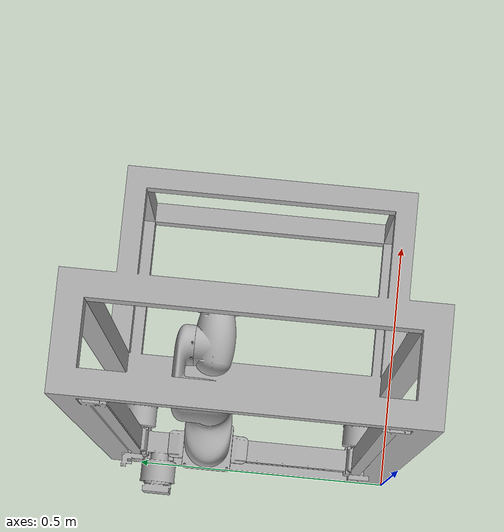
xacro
<?xml version="1.0"?>
<robot xmlns:xacro="http://wiki.ros.org/xacro" name="mr_robot">

    <!-- define default arguments -->
    <xacro:arg name="prefix" default=""/>
    <xacro:arg name="joint_limited" default="true"/>
    <xacro:arg name="safety_limits" default="false"/>
    <xacro:arg name="transmission_hw_interface" default="hardware_interface/PositionJointInterface"/>
    <xacro:arg name="use_palm" default="true"/>
    <xacro:arg name="xyz" default="0.0 0.0 0.0" />
    <xacro:arg name="rpy" default="0.0 0.0 0.0" />

    <!-- include common stuff macro -->
    <xacro:include filename="$(find mr_description)/urdf/common.gazebo.xacro" />

    <!-- include mr and palm macro -->
    <xacro:include filename="$(find mr_description)/urdf/mr.urdf.xacro" />
    <xacro:include filename="$(find mr_description)/urdf/palm.urdf.xacro" />

    <!-- construct mr and palm -->
    <xacro:mr prefix="$(arg prefix)" joint_limited="$(arg joint_limited)" safety_limits="$(arg safety_limits)" transmission_hw_interface="$(arg transmission_hw_interface)" />
    <xacro:if value="$(arg use_palm)">
        <xacro:palm prefix="$(arg prefix)" attach_to="$(arg prefix)ee_link" />
    </xacro:if>

    <!-- construct the scene -->
    <link name="world" />
    <joint name="$(arg prefix)world_joint" type="fixed">
        <parent link="world" />
        <child link = "$(arg prefix)rail_vertical_link" />
        <origin xyz="$(arg xyz)" rpy="$(arg rpy)" />
    </joint>

</robot>

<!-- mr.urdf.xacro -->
<robot xmlns:xacro="http://wiki.ros.org/xacro">

    <xacro:include filename="$(find mr_description)/urdf/mr.transmission.xacro" />
    <xacro:include filename="$(find mr_description)/urdf/mr.gazebo.xacro" />

    <xacro:macro name="link_inertial" params="radius length height mass *origin *inertia">
        <inertial>
            <mass value="${mass}" />
            <xacro:insert_block name="origin" />
            <xacro:insert_block name="inertia" />
        </inertial>
    </xacro:macro>

    <xacro:macro name="mr"
        params="prefix:=mr_ joint_limited:=true
        joint1_lower_limit:=0.0            joint1_upper_limit:=0.7934
        joint2_lower_limit:=0.0            joint2_upper_limit:=0.14936
        joint3_lower_limit:=${-pi}         joint3_upper_limit:=${pi*0.25}
        joint4_lower_limit:=${-pi}         joint4_upper_limit:=${pi*0.25}
        joint5_lower_limit:=${-pi*0.5}     joint5_upper_limit:=${pi*0.5}
        safety_limits:=false safety_pos_margin:=0.01 safety_k_position:=20
        transmission_hw_interface:=hardware_interface/PositionJointInterface">

        <!-- Inertia parameters -->
        <xacro:property name="rail_vertical_mass" value="54.727661" />  <!-- This mass might be incorrect -->
        <xacro:property name="rail_horizontal_mass" value="1.801061" />
        <xacro:property name="mount_mass" value="0.364397" />
        <xacro:property name="base_mass" value="0.156140" />
        <xacro:property name="shoulder_mass" value="0.987376" />
        <xacro:property name="upperarm_mass" value="0.862952" />
        <xacro:property name="forearm_mass" value="0.714455" />

        <xacro:property name="rail_vertical_cog" value="0.172751 0.287763 0.558117" />
        <xacro:property name="rail_horizontal_cog" value="-0.020063 0.215257 -0.022838" />
        <xacro:property name="mount_cog" value="-0.000008 0.0 -0.009563" />
        <xacro:property name="base_cog" value="0.001693 -0.000940 0.004017" />
        <xacro:property name="shoulder_cog" value="0.016427 0.000038 -0.02561" />
        <xacro:property name="upperarm_cog" value="0.010984 0.011237 0.024315" />
        <xacro:property name="forearm_cog" value="0.006149 0.000012 0.026218" />

        <!-- Kinematic model -->
        <!-- Properties from crcontrol.conf -->

        <!-- Link height, length and radius used in model -->
        <xacro:property name="rail_vertical_height" value="1.4" />
        <xacro:property name="rail_horizontal_height" value="0.12" />
        <xacro:property name="mount_height" value="0.02118" />
        <xacro:property name="base_height" value="0.008" />
        <xacro:property name="shoulder_height" value="0.10034" />
        <xacro:property name="upperarm_height" value="0.04544" />
        <xacro:property name="forearm_height" value="0.6341" />

        <xacro:property name="rail_vertical_length" value="0.56" />
        <xacro:property name="rail_horizontal_length" value="0.4" />
        <xacro:property name="mount_length" value="0.15114" />
        <xacro:property name="base_length" value="0.088" />
        <xacro:property name="shoulder_length" value="0.07074" />
        <xacro:property name="upperarm_length" value="0.10007" />
        <xacro:property name="forearm_length" value="0.6341" />

        <xacro:property name="rail_vertical_radius" value="0.3890" />  <!-- manually measured -->
        <xacro:property name="rail_horizontal_radius" value="0.06" />
        <xacro:property name="mount_radius" value="0.07557" />
        <xacro:property name="base_radius" value="0.0622" />
        <xacro:property name="shoulder_radius" value="0.041" />
        <xacro:property name="upperarm_radius" value="0.041" />
        <xacro:property name="elbow_radius" value="0.0375" />
        <xacro:property name="forearm_radius" value="0.037" />
        <xacro:property name="wrist_radius" value="0.0308" />

        <!-- Links and joints for mr -->
        <link name="${prefix}rail_vertical_link" >
            <visual>
                <geometry>
                    <mesh filename="package://mr_description/meshes/mr/visual/rail_vertical.dae" />
                </geometry>
                <material name="LightGrey">
                    <color rgba="0.7 0.7 0.7 1.0"/>
                </material>
            </visual>
            <collision>
                <geometry>
                    <mesh filename="package://mr_description/meshes/mr/collision/rail_vertical.stl" />
                </geometry>
            </collision>
            <xacro:link_inertial radius="${rail_vertical_radius}" length="${rail_vertical_length}" height="${rail_vertical_height}" mass="${rail_vertical_mass}">
                <origin xyz="0.172751 0.287763 0.558117" rpy="0.0 0.0 0.0" />
                <inertia ixx="36.516795" ixy="2.659442" ixz="3.545347"
                        iyy="32.321986" iyz="8.844368"
                        izz="10.701999" />
            </xacro:link_inertial>
        </link>

        <joint name="${prefix}joint1" type="prismatic">
            <parent link="${prefix}rail_vertical_link" />
            <child link = "${prefix}rail_horizontal_link" />
            <origin xyz="0.01977 0.1295 0.35006" rpy="0.0 0.0 0.0" />
            <axis xyz="0 0 1" />
            <xacro:unless value="${joint_limited}">
                <limit lower="0.0" upper="0.88" effort="200.0" velocity="0.314159"/>
                <xacro:if value="${safety_limits}">
                    <safety_controller soft_lower_limit="${0.0 + safety_pos_margin}" soft_upper_limit="${0.88 - safety_pos_margin}" k_position="${safety_k_position}" k_velocity="0.0"/>
                </xacro:if>
            </xacro:unless>
            <xacro:if value="${joint_limited}">
                <limit lower="${joint1_lower_limit}" upper="${joint1_upper_limit}" effort="200.0" velocity="0.314159"/>
                <xacro:if value="${safety_limits}">
                    <safety_controller soft_lower_limit="${joint1_lower_limit + safety_pos_margin}" soft_upper_limit="${joint1_upper_limit - safety_pos_margin}" k_position="${safety_k_position}" k_velocity="0.0"/>
                </xacro:if>
            </xacro:if>
            <dynamics damping="0.0" friction="0.0"/>
        </joint>

        <link name="${prefix}rail_horizontal_link">
            <visual>
                <geometry>
                    <mesh filename="package://mr_description/meshes/mr/visual/rail_horizontal.dae" />
                </geometry>
                <material name="LightGrey">
                    <color rgba="0.7 0.7 0.7 1.0"/>
                </material>
            </visual>
            <collision>
                <geometry>
                    <mesh filename="package://mr_description/meshes/mr/collision/rail_horizontal.stl" />
                </geometry>
            </collision>
            <xacro:link_inertial radius="${rail_horizontal_radius}" length="${rail_horizontal_length}" height="${rail_horizontal_height}" mass="${rail_horizontal_mass}">
                <origin xyz="-0.020063 0.215257 -0.022838" rpy="0.0 0.0 0.0" />
                <inertia ixx="0.115403" ixy="-0.011407" ixz="0.000829"
                        iyy="0.004044" iyz="-0.009148"
                        izz="0.116412" />
            </xacro:link_inertial>
        </link>

        <joint name="${prefix}joint2" type="prismatic">
            <parent link="${prefix}rail_horizontal_link" />
            <child link = "${prefix}mount_link" />
            <origin xyz="0.00026 0.22493 0.021" rpy="0.0 0.0 0.0" />
            <axis xyz="0 -1 0" />
            <xacro:unless value="${joint_limited}">
                <limit lower="0.0" upper="0.14936" effort="200.0" velocity="0.314159"/>
                <xacro:if value="${safety_limits}">
                    <safety_controller soft_lower_limit="${0.0 + safety_pos_margin}" soft_upper_limit="${0.14936 - safety_pos_margin}" k_position="${safety_k_position}" k_velocity="0.0"/>
                </xacro:if>
            </xacro:unless>
            <xacro:if value="${joint_limited}">
                <limit lower="${joint2_lower_limit}" upper="${joint2_upper_limit}" effort="200.0" velocity="0.314159"/>
                <xacro:if value="${safety_limits}">
                    <safety_controller soft_lower_limit="${joint2_lower_limit + safety_pos_margin}" soft_upper_limit="${joint2_upper_limit - safety_pos_margin}" k_position="${safety_k_position}" k_velocity="0.0"/>
                </xacro:if>
            </xacro:if>
            <dynamics damping="0.0" friction="0.0"/>
        </joint>

        <link name="${prefix}mount_link">
            <visual>
                <geometry>
                    <mesh filename="package://mr_description/meshes/mr/visual/mount.dae" />
                </geometry>
                <material name="LightGrey">
                    <color rgba="0.7 0.7 0.7 1.0"/>
                </material>
            </visual>
            <collision>
                <geometry>
                    <mesh filename="package://mr_description/meshes/mr/collision/mount.stl" />
                </geometry>
            </collision>
            <xacro:link_inertial radius="${mount_radius}" length="${mount_length}" height="${mount_height}" mass="${mount_mass}">
                <origin xyz="-0.000008 0.0 -0.009563" rpy="0.0 0.0 0.0" />
                <inertia ixx="0.000366" ixy="0.0" ixz="0.0"
                        iyy="0.000228" iyz="0.0"
                        izz="0.000498" />
            </xacro:link_inertial>
        </link>

        <joint name="${prefix}mount-base_fixed_joint" type="fixed">
            <parent link="${prefix}mount_link" />
            <child link = "${prefix}base_link" />
            <origin xyz="0.00018 0.00045 0.0" rpy="0.0 0.0 0.0" />
        </joint>

        <link name="${prefix}base_link">
            <visual>
                <geometry>
                    <mesh filename="package://mr_description/meshes/mr/visual/base.dae" />
                </geometry>
                <material name="LightGrey">
                    <color rgba="0.7 0.7 0.7 1.0"/>
                </material>
            </visual>
            <collision>
                <geometry>
                    <mesh filename="package://mr_description/meshes/mr/collision/base.stl" />
                </geometry>
            </collision>
            <xacro:link_inertial radius="${base_radius}" length="${base_length}" height="${base_height}" mass="${base_mass}">
                <origin xyz="0.001693 -0.000940 0.004017" rpy="0.0 0.0 0.0" />
                <inertia ixx="0.000117" ixy="0.000002" ixz="0.000001"
                        iyy="0.000103" iyz="0.0"
                        izz="0.000213" />
            </xacro:link_inertial>
        </link>

        <joint name="${prefix}joint3" type="revolute">
            <parent link="${prefix}base_link" />
            <child link = "${prefix}shoulder_link" />
            <origin xyz="0.00006 0.0 0.008" rpy="0.0 0.0 0.0" />
            <axis xyz="0 0 1" />
            <xacro:unless value="${joint_limited}">
                <limit lower="${-1.0 * pi}" upper="${1.0 * pi}" effort="2.0" velocity="3.2"/>
                <xacro:if value="${safety_limits}">
                    <safety_controller soft_lower_limit="${-1.0 * pi + safety_pos_margin}" soft_upper_limit="${1.0 * pi - safety_pos_margin}" k_position="${safety_k_position}" k_velocity="0.0"/>
                </xacro:if>
            </xacro:unless>
            <xacro:if value="${joint_limited}">
                <limit lower="${joint3_lower_limit}" upper="${joint3_upper_limit}" effort="2.0" velocity="3.2"/>
                <xacro:if value="${safety_limits}">
                    <safety_controller soft_lower_limit="${joint3_lower_limit + safety_pos_margin}" soft_upper_limit="${joint3_upper_limit - safety_pos_margin}" k_position="${safety_k_position}" k_velocity="0.0"/>
                </xacro:if>
            </xacro:if>
            <dynamics damping="0.0" friction="0.0"/>
        </joint>

        <link name="${prefix}shoulder_link">
            <visual>
                <geometry>
                    <mesh filename="package://mr_description/meshes/mr/visual/shoulder.dae" />
                </geometry>
                <material name="LightGrey">
                    <color rgba="0.7 0.7 0.7 1.0"/>
                </material>
            </visual>
            <collision>
                <geometry>
                    <mesh filename="package://mr_description/meshes/mr/collision/shoulder.stl" />
                </geometry>
            </collision>
            <xacro:link_inertial radius="${shoulder_radius}" length="${shoulder_length}" height="${shoulder_height}" mass="${shoulder_mass}">
                <origin xyz="0.016427 0.000038 0.047037" rpy="0.0 0.0 0.0" />
                <inertia ixx="0.003185" ixy="0.000001" ixz="0.001093"
                        iyy="0.004224" iyz="0.000002"
                        izz="0.002052" />
            </xacro:link_inertial>
        </link>

        <joint name="${prefix}joint4" type="revolute">
            <parent link="${prefix}shoulder_link" />
            <child link = "${prefix}upperarm_link" />
            <origin xyz="0.07074 0.0 0.10034" rpy="0.0 0.0 0.0" />
            <axis xyz="0 0 1" />
            <xacro:unless value="${joint_limited}">
                <limit lower="${-1.0 * pi}" upper="${1.0 * pi}" effort="2.0" velocity="3.2"/>
                <xacro:if value="${safety_limits}">
                    <safety_controller soft_lower_limit="${-1.0 * pi + safety_pos_margin}" soft_upper_limit="${1.0 * pi - safety_pos_margin}" k_position="${safety_k_position}" k_velocity="0.0"/>
                </xacro:if>
            </xacro:unless>
            <xacro:if value="${joint_limited}">
                <limit lower="${joint4_lower_limit}" upper="${joint4_upper_limit}" effort="2.0" velocity="3.2"/>
                <xacro:if value="${safety_limits}">
                    <safety_controller soft_lower_limit="${joint4_lower_limit + safety_pos_margin}" soft_upper_limit="${joint4_upper_limit - safety_pos_margin}" k_position="${safety_k_position}" k_velocity="0.0"/>
                </xacro:if>
            </xacro:if>
            <dynamics damping="0.0" friction="0.0"/>
        </joint>

        <link name="${prefix}upperarm_link">
            <visual>
                <geometry>
                    <mesh filename="package://mr_description/meshes/mr/visual/upperarm.dae" />
                </geometry>
                <material name="LightGrey">
                    <color rgba="0.7 0.7 0.7 1.0"/>
                </material>
            </visual>
            <collision>
                <geometry>
                    <mesh filename="package://mr_description/meshes/mr/collision/upperarm.stl" />
                </geometry>
            </collision>
            <xacro:link_inertial radius="${upperarm_radius}" length="${upperarm_length}" height="${upperarm_height}" mass="${upperarm_mass}">
                <origin xyz="0.010984 0.011237 0.024315" rpy="0.0 0.0 0.0" />
                <inertia ixx="0.001935" ixy="0.000535" ixz="0.000441"
                        iyy="0.002314" iyz="0.000446"
                        izz="0.002068" />
            </xacro:link_inertial>
        </link>

        <joint name="${prefix}joint5" type="revolute">
            <parent link="${prefix}upperarm_link" />
            <child link = "${prefix}forearm_link" />
            <origin xyz="0.10007 0.03682 0.04544" rpy="${pi/2.0} 0.0 0.0" />
            <axis xyz="0 0 1" />
            <xacro:unless value="${joint_limited}">
                <limit lower="${-0.5 * pi}" upper="${0.5 * pi}" effort="2.0" velocity="3.2"/>
                <xacro:if value="${safety_limits}">
                    <safety_controller soft_lower_limit="${-0.5 * pi + safety_pos_margin}" soft_upper_limit="${0.5 * pi - safety_pos_margin}" k_position="${safety_k_position}" k_velocity="0.0"/>
                </xacro:if>
            </xacro:unless>
            <xacro:if value="${joint_limited}">
                <limit lower="${joint5_lower_limit}" upper="${joint5_upper_limit}" effort="2.0" velocity="3.2"/>
                <xacro:if value="${safety_limits}">
                    <safety_controller soft_lower_limit="${joint5_lower_limit + safety_pos_margin}" soft_upper_limit="${joint5_upper_limit - safety_pos_margin}" k_position="${safety_k_position}" k_velocity="0.0"/>
                </xacro:if>
            </xacro:if>
            <dynamics damping="0.0" friction="0.0"/>
        </joint>

        <link name="${prefix}forearm_link">
            <visual>
                <geometry>
                    <mesh filename="package://mr_description/meshes/mr/visual/forearm.dae" />
                </geometry>
                <material name="LightGrey">
                    <color rgba="0.7 0.7 0.7 1.0"/>
                </material>
            </visual>
            <collision>
                <geometry>
                    <mesh filename="package://mr_description/meshes/mr/collision/forearm.stl" />
                </geometry>
            </collision>
            <xacro:link_inertial radius="${forearm_radius}" length="${forearm_length}" height="${forearm_height}" mass="${forearm_mass}">
                <origin xyz="0.006149 0.000012 0.026218" rpy="0.0 0.0 0.0" />
                <inertia ixx="0.001035" ixy="0.0" ixz="0.000164"
                        iyy="0.001388" iyz="0.0"
                        izz="0.000814" />
            </xacro:link_inertial>
        </link>

        <joint name="${prefix}forearm_link-ee_link_fixed_joint" type="fixed">
            <parent link="${prefix}forearm_link" />
            <child link = "${prefix}ee_link" />
            <origin xyz="0.06341 0.0005 0.03597" rpy="${-pi/2.0} 0.0 ${-pi/2.0}" />
        </joint>

        <link name="${prefix}ee_link"/>

        <!-- Transmission and gazebo for mr -->
        <xacro:mr_transmission prefix="${prefix}" hw_interface="${transmission_hw_interface}" />
        <xacro:mr_gazebo prefix="${prefix}" />

        <!-- ROS rail_vertical_link to mr 'Base' ROOT coordinate system transform -->
        <link name="${prefix}base"/>
        <joint name="${prefix}rail_vertical_link-base_fixed_joint" type="fixed">
            <parent link="${prefix}rail_vertical_link"/>  <!-- base_link -->
            <child link="${prefix}base"/> <!-- base ROOT -->
            <origin xyz="0.0 0.0 0.0" rpy="0.0 0.0 0.0"/>
        </joint>

        <!-- Frame coincident with all-zeros TCP on mr controller -->
        <link name="${prefix}tool0"/>
        <joint name="${prefix}ee_link-tool0_fixed_joint" type="fixed">
            <parent link="${prefix}ee_link"/>
            <child link="${prefix}tool0"/>
            <origin xyz="0.0 0.0 0.0" rpy="0.0 0.0 0.0"/>
        </joint>

    </xacro:macro>

</robot>

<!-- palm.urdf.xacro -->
<robot xmlns:xacro="http://wiki.ros.org/xacro">

    <xacro:include filename="$(find mr_description)/urdf/mr.gazebo.xacro" />

    <xacro:macro name="link_inertial" params="radius length height mass *origin *inertia">
        <inertial>
            <mass value="${mass}" />
            <xacro:insert_block name="origin" />
            <xacro:insert_block name="inertia" />
        </inertial>
    </xacro:macro>

    <xacro:macro name="palm" params="prefix:=palm_ attach_to:='ee_link'" >
        <!-- Inertia parameters -->
        <xacro:property name="palm_mass" value="0.206168" />  <!-- This mass might be incorrect -->
        <xacro:property name="palm_cog" value="0.0 -0.000034 0.014160" />

        <!-- Link height, length and radius used in model -->
        <xacro:property name="palm_height" value="0.03453" />
        <xacro:property name="palm_length" value="0.03453" />
        <xacro:property name="palm_radius" value="0.0415" />  <!-- manually measured -->

        <!-- Links and joints for palm -->
        <xacro:unless value="${attach_to == ''}">
            <joint name="${attach_to}-palm_link_fixed_joint" type="fixed">
                <parent link="${attach_to}" />
                <child link = "${prefix}palm_link" />
                <origin xyz="0.0 0.0 0" rpy="0.0 0.0 0.0" />
            </joint>
        </xacro:unless>

        <link name="${prefix}palm_link">
            <visual>
                <geometry>
                    <mesh filename="package://mr_description/meshes/mr/visual/palm.dae" />
                </geometry>
                <material name="LightGrey">
                    <color rgba="0.7 0.7 0.7 1.0"/>
                </material>
            </visual>
            <collision>
                <geometry>
                    <mesh filename="package://mr_description/meshes/mr/collision/palm.stl" />
                </geometry>
            </collision>
            <xacro:link_inertial radius="${palm_radius}" length="${palm_length}" height="${palm_height}" mass="${palm_mass}">
                <origin xyz="0.0 -0.000034 0.014160" rpy="0.0 0.0 0.0" />
                <inertia ixx="0.000140" ixy="0.0" ixz="0.0"
                         iyy="0.000141" iyz="0.0"
                         izz="0.000168" />
            </xacro:link_inertial>
        </link>

        <joint name="${prefix}palm_link-tcp_fixed_joint" type="fixed">
            <parent link="${prefix}palm_link" />
            <child link = "${prefix}tcp" />
            <origin xyz="0.0 0.0 0.03453" rpy="0.0 0.0 0.0" />
        </joint>

        <link name="${prefix}tcp"/>

        <!-- Gazebo for Palm -->
        <xacro:mr_gazebo prefix="${prefix}" />

    </xacro:macro>

</robot>
